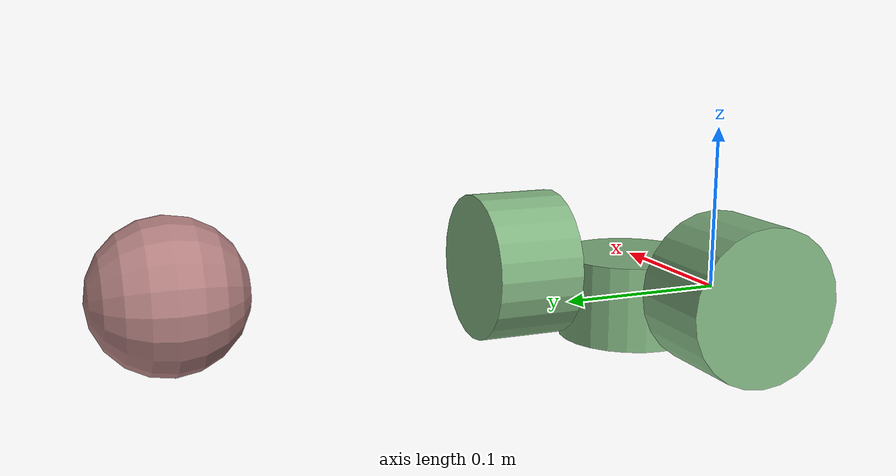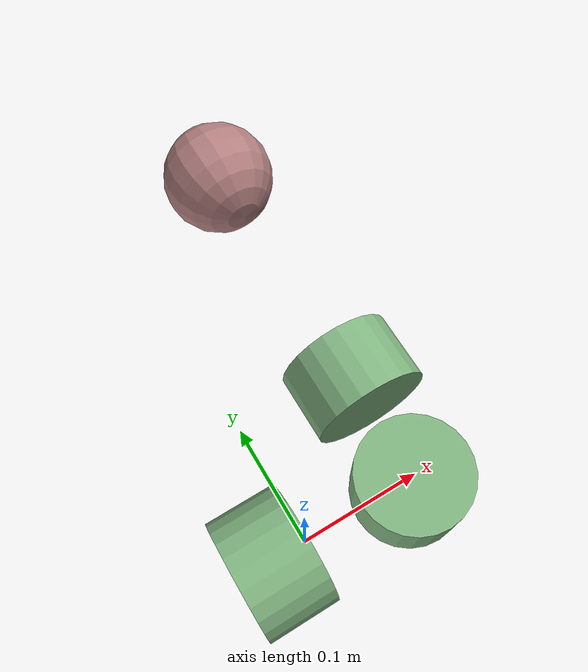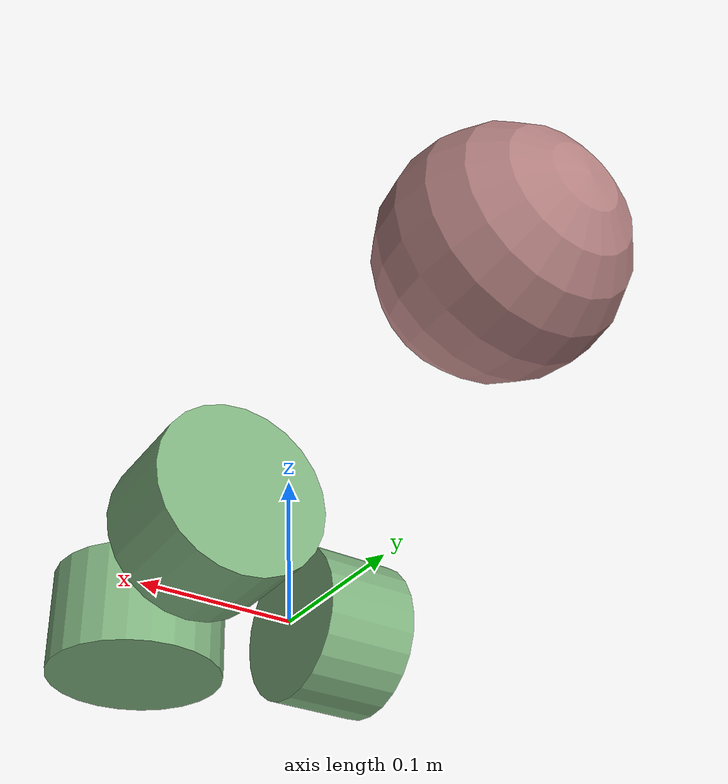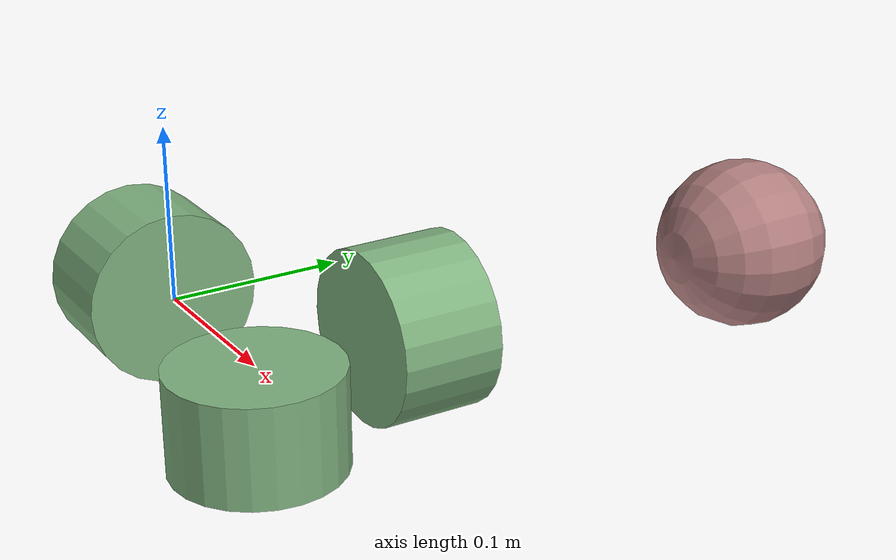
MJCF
<mujoco>
    <option gravity="0 0 -9.81">
        <flag contact="disable"/>
    </option>

    <actuator>
        <position name="pitch" gear="36" joint="j_pitch" kp="0.7" dampratio="1" ctrlrange="-113.1 113.1" />
        <position name="roll"  gear="36" joint="j_roll"  kp="0.1" dampratio="1" ctrlrange="-113.1 113.1" />
        <!--position name="yaw"   gear="36" joint="j_yaw"   kp="0.001" dampratio="1" forcelimited="true" forcerange="-60 60" ctrlrange="-113.1 113.1"/-->
    </actuator>

    <asset>
        <material name="col_blue" rgba="0 0 1 1" />
        <material name="col_green" rgba="0 1 0 1" />
        <material name="col_red" rgba="1 0 0 1" />
        <material name="col_white" rgba="1 1 1 1" />
        <material name="col_la" rgba="0.5 0.7 0.5 1" />
        <material name="col_lb" rgba="0.7 0.5 0.5 1" />
    </asset>

    <default>
        <default class="x8-60">
            <geom type="cylinder" size=".049 .029" pos="0 0 -.029" material="col_la" mass="0.9" />
        </default>
    </default>

    <worldbody>
        <geom type="plane" size="10 10 0.1" pos="0 0 -5" rgba=".9 0 0 1" />

        <body name="pitch_base" pos="0 0 0" euler="0 90 0">
        <geom class="x8-60" />
            <body name="pitch" pos="0 0 0" euler="0 0 0">
                <joint name="j_pitch" type="hinge" pos="0 0 0" axis="0 0 1" />

                <body name="roll_base" pos="0 0 .1" euler="0 -90 0">
                    <geom class="x8-60" />
                    <body name="roll" pos="0 0 0" euler="0 0 0">
                        <joint name="j_roll" type="hinge" pos="0 0 0" axis="0 0 1" />

                        <body name="yaw_base" pos="0 .12 0" euler="-90 0 0">
                            <geom class="x8-60" />
                            <body name="yaw" pos="0 0 .2" euler="0 0 0">
                                <joint name="j_yaw" type="hinge" pos="0 0 0" axis="0 0 1" />
                                <body name="end" pos="0 0 0" euler="0 0 0">
                                    <geom type="sphere" pos="0 0 0" euler="0 0 0" size=".05" material="col_lb" mass="0.1" />
                                </body>
                            </body>
                        </body>
                    </body>
                </body>
            </body>
        </body>
    </worldbody>
    <contact>
    </contact>
</mujoco>
